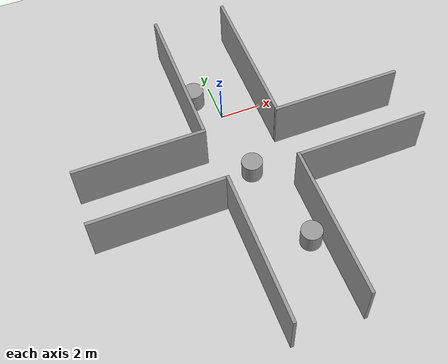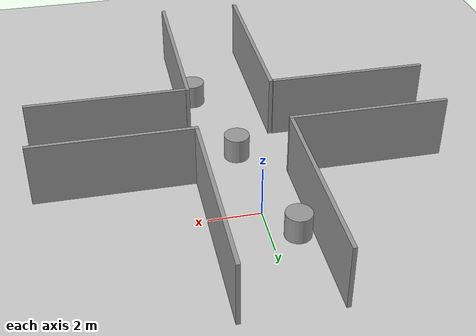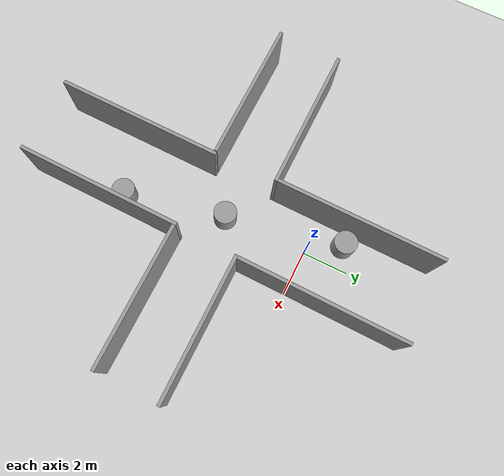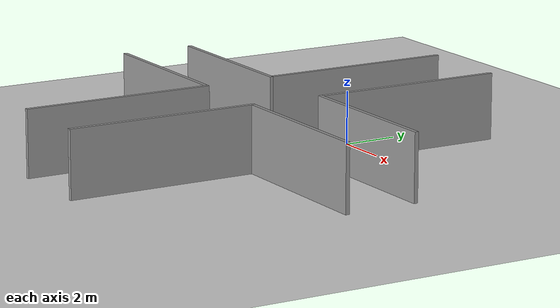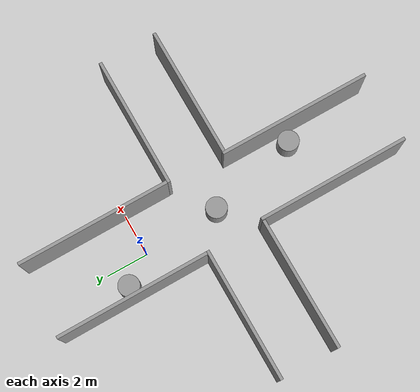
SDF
<sdf version="1.7">
 <world name="default">
  <light name="sun" type="directional">
   <pose>0 0 10 0 -0 0</pose>
   <diffuse>0.8 0.8 0.8 1</diffuse>
   <specular>0.2 0.2 0.2 1</specular>
   <attenuation>
    <range>1000</range>
    <constant>0.9</constant>
    <linear>0.01</linear>
    <quadratic>0.001</quadratic>
   </attenuation>
   <direction>-0.5 0.1 -0.9</direction>
   <spot><inner_angle>0</inner_angle><outer_angle>0</outer_angle><falloff>0</falloff></spot>
  </light>
  <model name="ground_plane">
   <static>1</static>
   <link name="link">
    <collision name="collision">
     <geometry><plane><normal>0 0 1</normal><size>100 100</size></plane></geometry>
     <surface><friction><ode><mu>100</mu><mu2>50</mu2></ode></friction></surface>
    </collision>
    <visual name="visual">
     <cast_shadows>0</cast_shadows>
     <geometry><plane><normal>0 0 1</normal><size>100 100</size></plane></geometry>
     <material>
      <script><uri>file://media/materials/scripts/gazebo.material</uri><name>Gazebo/Grey</name></script>
     </material>
    </visual>
   </link>
  </model>
  <gravity>0 0 -9.8</gravity>
  <magnetic_field>6e-06 2.3e-05 -4.2e-05</magnetic_field>
  <atmosphere type="adiabatic"/>
  <physics type="ode">
   <max_step_size>0.001</max_step_size>
   <real_time_factor>1</real_time_factor>
   <real_time_update_rate>1000</real_time_update_rate>
  </physics>
  <scene><ambient>0.4 0.4 0.4 1</ambient><background>0.7 0.7 0.7 1</background><shadows>1</shadows></scene>
  <spherical_coordinates>
   <surface_model>EARTH_WGS84</surface_model>
   <latitude_deg>0</latitude_deg>
   <longitude_deg>0</longitude_deg>
   <elevation>0</elevation>
   <heading_deg>0</heading_deg>
  </spherical_coordinates>
  <model name="Untitled">
   <pose>-0.8475 1.4 0 0 -0 0</pose>
   <link name="Wall_0">
    <collision name="Wall_0_Collision">
     <geometry><box><size>7.25 0.15 2.5</size></box></geometry>
     <pose>0 0 1.25 0 -0 0</pose>
    </collision>
    <visual name="Wall_0_Visual">
     <pose>0 0 1.25 0 -0 0</pose>
     <geometry><box><size>7.25 0.15 2.5</size></box></geometry>
     <material>
      <script><uri>file://media/materials/scripts/gazebo.material</uri><name>Gazebo/Grey</name></script>
      <ambient>1 1 1 1</ambient>
     </material>
     <meta><layer>0</layer></meta>
    </visual>
    <pose>-0.7725 -0 0 0 -0 -1.5708</pose>
   </link>
   <static>1</static>
  </model>
  <model name="Untitled_clone">
   <pose>2.71577 1.37766 0 0 -0 0</pose>
   <link name="Wall_0">
    <collision name="Wall_0_Collision">
     <geometry><box><size>7.25 0.15 2.5</size></box></geometry>
     <pose>0 0 1.25 0 -0 0</pose>
    </collision>
    <visual name="Wall_0_Visual">
     <pose>0 0 1.25 0 -0 0</pose>
     <geometry><box><size>7.25 0.15 2.5</size></box></geometry>
     <material>
      <script><uri>file://media/materials/scripts/gazebo.material</uri><name>Gazebo/Grey</name></script>
      <ambient>1 1 1 1</ambient>
     </material>
     <meta><layer>0</layer></meta>
    </visual>
    <pose>-0.7725 -0 0 0 -0 -1.5708</pose>
   </link>
   <static>1</static>
  </model>
  <model name="Untitled_0">
   <pose>-3.89847 -1.1825 0 0 -0 0</pose>
   <link name="Wall_2">
    <collision name="Wall_2_Collision">
     <geometry><box><size>6.25 0.15 2.5</size></box></geometry>
     <pose>0 0 1.25 0 -0 0</pose>
    </collision>
    <visual name="Wall_2_Visual">
     <pose>0 0 1.25 0 -0 0</pose>
     <geometry><box><size>6.25 0.15 2.5</size></box></geometry>
     <material>
      <script><uri>file://media/materials/scripts/gazebo.material</uri><name>Gazebo/Grey</name></script>
      <ambient>1 1 1 1</ambient>
     </material>
     <meta><layer>0</layer></meta>
    </visual>
    <pose>-0.773474 -1.1075 0 0 -0 0</pose>
   </link>
   <static>1</static>
  </model>
  <model name="Untitled_0_clone">
   <pose>5.77687 -1.21463 0 0 -0 0</pose>
   <link name="Wall_2">
    <collision name="Wall_2_Collision">
     <geometry><box><size>6.25 0.15 2.5</size></box></geometry>
     <pose>0 0 1.25 0 -0 0</pose>
    </collision>
    <visual name="Wall_2_Visual">
     <pose>0 0 1.25 0 -0 0</pose>
     <geometry><box><size>6.25 0.15 2.5</size></box></geometry>
     <material>
      <script><uri>file://media/materials/scripts/gazebo.material</uri><name>Gazebo/Grey</name></script>
      <ambient>1 1 1 1</ambient>
     </material>
     <meta><layer>0</layer></meta>
    </visual>
    <pose>-0.773474 -1.1075 0 0 -0 0</pose>
   </link>
   <static>1</static>
  </model>
  <model name="Untitled_0_clone_0">
   <pose>-3.94817 -3.92972 0 0 -0 0</pose>
   <link name="Wall_2">
    <collision name="Wall_2_Collision">
     <geometry><box><size>6.25 0.15 2.5</size></box></geometry>
     <pose>0 0 1.25 0 -0 0</pose>
    </collision>
    <visual name="Wall_2_Visual">
     <pose>0 0 1.25 0 -0 0</pose>
     <geometry><box><size>6.25 0.15 2.5</size></box></geometry>
     <material>
      <script><uri>file://media/materials/scripts/gazebo.material</uri><name>Gazebo/Grey</name></script>
      <ambient>1 1 1 1</ambient>
     </material>
     <meta><layer>0</layer></meta>
    </visual>
    <pose>-0.773474 -1.1075 0 0 -0 0</pose>
   </link>
   <static>1</static>
  </model>
  <model name="Untitled_0_clone_1">
   <pose>5.81237 -3.96029 0 0 -0 0</pose>
   <link name="Wall_2">
    <collision name="Wall_2_Collision">
     <geometry><box><size>6.25 0.15 2.5</size></box></geometry>
     <pose>0 0 1.25 0 -0 0</pose>
    </collision>
    <visual name="Wall_2_Visual">
     <pose>0 0 1.25 0 -0 0</pose>
     <geometry><box><size>6.25 0.15 2.5</size></box></geometry>
     <material>
      <script><uri>file://media/materials/scripts/gazebo.material</uri><name>Gazebo/Grey</name></script>
      <ambient>1 1 1 1</ambient>
     </material>
     <meta><layer>0</layer></meta>
    </visual>
    <pose>-0.773474 -1.1075 0 0 -0 0</pose>
   </link>
   <static>1</static>
  </model>
  <model name="Untitled_clone_0">
   <pose>-0.726079 -8.5964 0 0 -0 0</pose>
   <link name="Wall_0">
    <collision name="Wall_0_Collision">
     <geometry><box><size>7.25 0.15 2.5</size></box></geometry>
     <pose>0 0 1.25 0 -0 0</pose>
    </collision>
    <visual name="Wall_0_Visual">
     <pose>0 0 1.25 0 -0 0</pose>
     <geometry><box><size>7.25 0.15 2.5</size></box></geometry>
     <material>
      <script><uri>file://media/materials/scripts/gazebo.material</uri><name>Gazebo/Grey</name></script>
      <ambient>1 1 1 1</ambient>
     </material>
     <meta><layer>0</layer></meta>
    </visual>
    <pose>-0.7725 -0 0 0 -0 -1.5708</pose>
   </link>
   <static>1</static>
  </model>
  <model name="Untitled_clone_clone">
   <pose>2.6245 -8.60749 0 0 -0 0</pose>
   <link name="Wall_0">
    <collision name="Wall_0_Collision">
     <geometry><box><size>7.25 0.15 2.5</size></box></geometry>
     <pose>0 0 1.25 0 -0 0</pose>
    </collision>
    <visual name="Wall_0_Visual">
     <pose>0 0 1.25 0 -0 0</pose>
     <geometry><box><size>7.25 0.15 2.5</size></box></geometry>
     <material>
      <script><uri>file://media/materials/scripts/gazebo.material</uri><name>Gazebo/Grey</name></script>
      <ambient>1 1 1 1</ambient>
     </material>
     <meta><layer>0</layer></meta>
    </visual>
    <pose>-0.7725 -0 0 0 -0 -1.5708</pose>
   </link>
   <static>1</static>
  </model>
  <model name="unit_cylinder_0">
   <pose>-0.972042 1.36619 0.499998 3e-06 -4e-06 0</pose>
   <link name="link">
    <inertial>
     <mass>1</mass>
     <inertia><ixx>0.145833</ixx><ixy>0</ixy><ixz>0</ixz><iyy>0.145833</iyy><iyz>0</iyz><izz>0.125</izz></inertia>
    </inertial>
    <collision name="collision">
     <geometry><cylinder><radius>0.5</radius><length>1</length></cylinder></geometry>
    </collision>
    <visual name="visual">
     <geometry><cylinder><radius>0.5</radius><length>1</length></cylinder></geometry>
     <material>
      <script><name>Gazebo/Grey</name><uri>file://media/materials/scripts/gazebo.material</uri></script>
     </material>
    </visual>
   </link>
  </model>
  <model name="unit_cylinder_1">
   <pose>1.22382 -8.05848 0.499993 -3e-06 -4e-06 -0</pose>
   <link name="link">
    <inertial>
     <mass>1</mass>
     <inertia><ixx>0.145833</ixx><ixy>0</ixy><ixz>0</ixz><iyy>0.145833</iyy><iyz>0</iyz><izz>0.125</izz></inertia>
    </inertial>
    <collision name="collision">
     <geometry><cylinder><radius>0.5</radius><length>1</length></cylinder></geometry>
    </collision>
    <visual name="visual">
     <geometry><cylinder><radius>0.5</radius><length>1</length></cylinder></geometry>
     <material>
      <script><name>Gazebo/Grey</name><uri>file://media/materials/scripts/gazebo.material</uri></script>
     </material>
    </visual>
   </link>
  </model>
  <model name="unit_cylinder">
   <pose>0.158979 -3.70399 0.499997 3e-06 4e-06 -0</pose>
   <link name="link">
    <inertial>
     <mass>1</mass>
     <inertia><ixx>0.145833</ixx><ixy>0</ixy><ixz>0</ixz><iyy>0.145833</iyy><iyz>0</iyz><izz>0.125</izz></inertia>
    </inertial>
    <collision name="collision">
     <geometry><cylinder><radius>0.5</radius><length>1</length></cylinder></geometry>
    </collision>
    <visual name="visual">
     <geometry><cylinder><radius>0.5</radius><length>1</length></cylinder></geometry>
     <material>
      <script><name>Gazebo/Grey</name><uri>file://media/materials/scripts/gazebo.material</uri></script>
     </material>
    </visual>
   </link>
  </model>
 </world>
</sdf>
